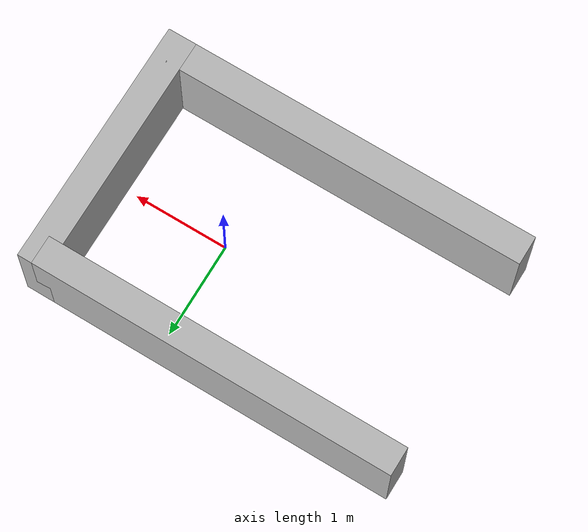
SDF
<?xml version="1.0"?>
<sdf version="1.10">
  <model name="harbour_reverse_straight">
    <static>true</static>
    <!-- A symmetric U-shaped berth: both arcs hit a side wall, while the
         shortest clear departure is straight astern. -->
    <link name="quay">
      <collision name="front_collision">
        <pose>1.25 0 0.5 0 0 0</pose>
        <geometry><box><size>0.30 2.60 1.0</size></box></geometry>
      </collision>
      <visual name="front_visual">
        <pose>1.25 0 0.5 0 0 0</pose>
        <geometry><box><size>0.30 2.60 1.0</size></box></geometry>
      </visual>
      <collision name="port_collision">
        <pose>-0.65 1.15 0.5 0 0 0</pose>
        <geometry><box><size>3.80 0.30 1.0</size></box></geometry>
      </collision>
      <visual name="port_visual">
        <pose>-0.65 1.15 0.5 0 0 0</pose>
        <geometry><box><size>3.80 0.30 1.0</size></box></geometry>
      </visual>
      <collision name="starboard_collision">
        <pose>-0.65 -1.15 0.5 0 0 0</pose>
        <geometry><box><size>3.80 0.30 1.0</size></box></geometry>
      </collision>
      <visual name="starboard_visual">
        <pose>-0.65 -1.15 0.5 0 0 0</pose>
        <geometry><box><size>3.80 0.30 1.0</size></box></geometry>
      </visual>
    </link>
  </model>
</sdf>
